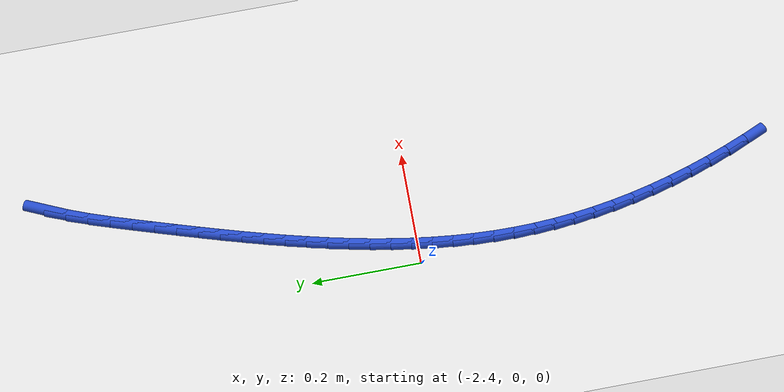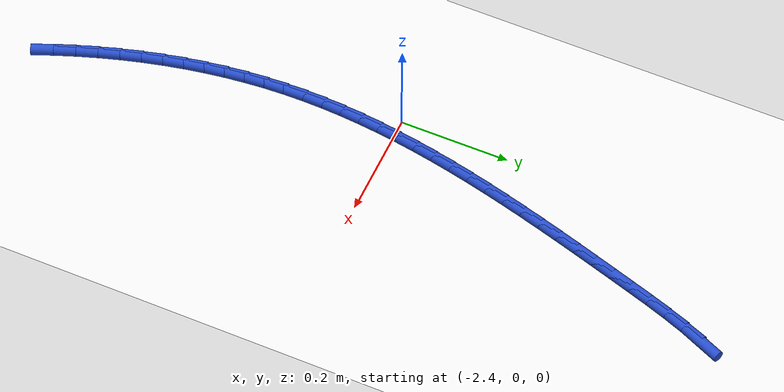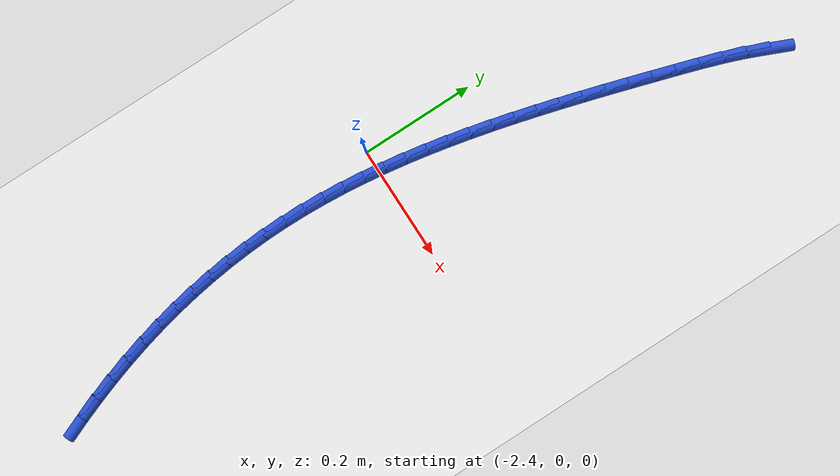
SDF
<sdf version="1.6">
 <world name="default">
  <model name="ground_plane">
   <static>1</static>
   <link name="link">
    <collision name="collision">
     <geometry><plane><normal>0 0 1</normal><size>100 100</size></plane></geometry>
     <surface><friction><ode><mu>100</mu><mu2>50</mu2></ode></friction></surface>
    </collision>
    <visual name="visual">
     <cast_shadows>0</cast_shadows>
     <geometry><plane><normal>0 0 1</normal><size>100 100</size></plane></geometry>
     <material>
      <script><uri>file://media/materials/scripts/gazebo.material</uri><name>Gazebo/WhiteGlow</name></script>
     </material>
    </visual>
   </link>
  </model>
  <model name="line">
   <link name="link_86">
    <pose>-2.182743333406154 0.6484220756656507 0.01 0 1.57 1.1633809160128756</pose>
    <collision name="collision">
     <geometry><cylinder><radius>0.01</radius><length>0.08</length></cylinder></geometry>
    </collision>
    <visual name="visual">
     <material>
      <script><name>Gazebo/Blue</name><uri>file://media/materials/scripts/gazebo.material</uri></script>
     </material>
     <geometry><cylinder><radius>0.01</radius><length>0.08</length></cylinder></geometry>
    </visual>
   </link>
   <link name="link_87">
    <pose>-2.19832546741805 0.6123156978202926 0.01 0 1.57 1.2123745785765128</pose>
    <collision name="collision">
     <geometry><cylinder><radius>0.01</radius><length>0.08</length></cylinder></geometry>
    </collision>
    <visual name="visual">
     <material>
      <script><name>Gazebo/Blue</name><uri>file://media/materials/scripts/gazebo.material</uri></script>
     </material>
     <geometry><cylinder><radius>0.01</radius><length>0.08</length></cylinder></geometry>
    </visual>
   </link>
   <link name="link_88">
    <pose>-2.212330064282339 0.5749304342201754 0.01 0 1.57 1.245750422957284</pose>
    <collision name="collision">
     <geometry><cylinder><radius>0.01</radius><length>0.08</length></cylinder></geometry>
    </collision>
    <visual name="visual">
     <material>
      <script><name>Gazebo/Blue</name><uri>file://media/materials/scripts/gazebo.material</uri></script>
     </material>
     <geometry><cylinder><radius>0.01</radius><length>0.08</length></cylinder></geometry>
    </visual>
   </link>
   <link name="link_89">
    <pose>-2.2252070407030926 0.5367196938417902 0.01 0 1.57 1.2645586026323068</pose>
    <collision name="collision">
     <geometry><cylinder><radius>0.01</radius><length>0.08</length></cylinder></geometry>
    </collision>
    <visual name="visual">
     <material>
      <script><name>Gazebo/Blue</name><uri>file://media/materials/scripts/gazebo.material</uri></script>
     </material>
     <geometry><cylinder><radius>0.01</radius><length>0.08</length></cylinder></geometry>
    </visual>
   </link>
   <link name="link_90">
    <pose>-2.2374063133843816 0.49813688566162545 0.01 0 1.57 1.270413290540117</pose>
    <collision name="collision">
     <geometry><cylinder><radius>0.01</radius><length>0.08</length></cylinder></geometry>
    </collision>
    <visual name="visual">
     <material>
      <script><name>Gazebo/Blue</name><uri>file://media/materials/scripts/gazebo.material</uri></script>
     </material>
     <geometry><cylinder><radius>0.01</radius><length>0.08</length></cylinder></geometry>
    </visual>
   </link>
   <link name="link_91">
    <pose>-2.249342304991646 0.45960335581266826 0.01 0 1.57 1.2728898206307577</pose>
    <collision name="collision">
     <geometry><cylinder><radius>0.01</radius><length>0.08</length></cylinder></geometry>
    </collision>
    <visual name="visual">
     <material>
      <script><name>Gazebo/Blue</name><uri>file://media/materials/scripts/gazebo.material</uri></script>
     </material>
     <geometry><cylinder><radius>0.01</radius><length>0.08</length></cylinder></geometry>
    </visual>
   </link>
   <link name="link_92">
    <pose>-2.2611161755693985 0.42125747078462955 0.01 0 1.57 1.2769476100801107</pose>
    <collision name="collision">
     <geometry><cylinder><radius>0.01</radius><length>0.08</length></cylinder></geometry>
    </collision>
    <visual name="visual">
     <material>
      <script><name>Gazebo/Blue</name><uri>file://media/materials/scripts/gazebo.material</uri></script>
     </material>
     <geometry><cylinder><radius>0.01</radius><length>0.08</length></cylinder></geometry>
    </visual>
   </link>
   <link name="link_93">
    <pose>-2.2726659329262557 0.38309021669552107 0.01 0 1.57 1.2826607527733882</pose>
    <collision name="collision">
     <geometry><cylinder><radius>0.01</radius><length>0.08</length></cylinder></geometry>
    </collision>
    <visual name="visual">
     <material>
      <script><name>Gazebo/Blue</name><uri>file://media/materials/scripts/gazebo.material</uri></script>
     </material>
     <geometry><cylinder><radius>0.01</radius><length>0.08</length></cylinder></geometry>
    </visual>
   </link>
   <link name="link_94">
    <pose>-2.2839281801446187 0.34509131073148197 0.01 0 1.57 1.2900631916455882</pose>
    <collision name="collision">
     <geometry><cylinder><radius>0.01</radius><length>0.08</length></cylinder></geometry>
    </collision>
    <visual name="visual">
     <material>
      <script><name>Gazebo/Blue</name><uri>file://media/materials/scripts/gazebo.material</uri></script>
     </material>
     <geometry><cylinder><radius>0.01</radius><length>0.08</length></cylinder></geometry>
    </visual>
   </link>
   <link name="link_95">
    <pose>-2.294839520306888 0.30725047007865114 0.01 0 1.57 1.2991909446662149</pose>
    <collision name="collision">
     <geometry><cylinder><radius>0.01</radius><length>0.08</length></cylinder></geometry>
    </collision>
    <visual name="visual">
     <material>
      <script><name>Gazebo/Blue</name><uri>file://media/materials/scripts/gazebo.material</uri></script>
     </material>
     <geometry><cylinder><radius>0.01</radius><length>0.08</length></cylinder></geometry>
    </visual>
   </link>
   <link name="link_96">
    <pose>-2.3053365564954644 0.269557411923169 0.01 0 1.57 1.3100815811085809</pose>
    <collision name="collision">
     <geometry><cylinder><radius>0.01</radius><length>0.08</length></cylinder></geometry>
    </collision>
    <visual name="visual">
     <material>
      <script><name>Gazebo/Blue</name><uri>file://media/materials/scripts/gazebo.material</uri></script>
     </material>
     <geometry><cylinder><radius>0.01</radius><length>0.08</length></cylinder></geometry>
    </visual>
   </link>
   <link name="link_97">
    <pose>-2.3153558917927497 0.23200185345117486 0.01 0 1.57 1.3227734902167347</pose>
    <collision name="collision">
     <geometry><cylinder><radius>0.01</radius><length>0.08</length></cylinder></geometry>
    </collision>
    <visual name="visual">
     <material>
      <script><name>Gazebo/Blue</name><uri>file://media/materials/scripts/gazebo.material</uri></script>
     </material>
     <geometry><cylinder><radius>0.01</radius><length>0.08</length></cylinder></geometry>
    </visual>
   </link>
   <link name="link_98">
    <pose>-2.324834129281144 0.19457351184880756 0.01 0 1.57 1.3373049126199532</pose>
    <collision name="collision">
     <geometry><cylinder><radius>0.01</radius><length>0.08</length></cylinder></geometry>
    </collision>
    <visual name="visual">
     <material>
      <script><name>Gazebo/Blue</name><uri>file://media/materials/scripts/gazebo.material</uri></script>
     </material>
     <geometry><cylinder><radius>0.01</radius><length>0.08</length></cylinder></geometry>
    </visual>
   </link>
   <link name="link_99">
    <pose>-2.333707872043048 0.1572621043022075 0.01 0 1.57 1.353712704577502</pose>
    <collision name="collision">
     <geometry><cylinder><radius>0.01</radius><length>0.08</length></cylinder></geometry>
    </collision>
    <visual name="visual">
     <material>
      <script><name>Gazebo/Blue</name><uri>file://media/materials/scripts/gazebo.material</uri></script>
     </material>
     <geometry><cylinder><radius>0.01</radius><length>0.08</length></cylinder></geometry>
    </visual>
   </link>
   <link name="link_100">
    <pose>-2.3419137231608627 0.12005734799751389 0.01 0 1.57 1.37203080771404</pose>
    <collision name="collision">
     <geometry><cylinder><radius>0.01</radius><length>0.08</length></cylinder></geometry>
    </collision>
    <visual name="visual">
     <material>
      <script><name>Gazebo/Blue</name><uri>file://media/materials/scripts/gazebo.material</uri></script>
     </material>
     <geometry><cylinder><radius>0.01</radius><length>0.08</length></cylinder></geometry>
    </visual>
   </link>
   <link name="link_101">
    <pose>-2.3493882857169894 0.08294896012086575 0.01 0 1.57 1.3922884035689662</pose>
    <collision name="collision">
     <geometry><cylinder><radius>0.01</radius><length>0.08</length></cylinder></geometry>
    </collision>
    <visual name="visual">
     <material>
      <script><name>Gazebo/Blue</name><uri>file://media/materials/scripts/gazebo.material</uri></script>
     </material>
     <geometry><cylinder><radius>0.01</radius><length>0.08</length></cylinder></geometry>
    </visual>
   </link>
   <link name="link_102">
    <pose>-2.3560681627938282 0.04592665785840348 0.01 0 1.57 1.4145077444306762</pose>
    <collision name="collision">
     <geometry><cylinder><radius>0.01</radius><length>0.08</length></cylinder></geometry>
    </collision>
    <visual name="visual">
     <material>
      <script><name>Gazebo/Blue</name><uri>file://media/materials/scripts/gazebo.material</uri></script>
     </material>
     <geometry><cylinder><radius>0.01</radius><length>0.08</length></cylinder></geometry>
    </visual>
   </link>
   <link name="link_103">
    <pose>-2.3618899574737804 0.008980158396266202 0.01 0 1.57 1.4387016709650013</pose>
    <collision name="collision">
     <geometry><cylinder><radius>0.01</radius><length>0.08</length></cylinder></geometry>
    </collision>
    <visual name="visual">
     <material>
      <script><name>Gazebo/Blue</name><uri>file://media/materials/scripts/gazebo.material</uri></script>
     </material>
     <geometry><cylinder><radius>0.01</radius><length>0.08</length></cylinder></geometry>
    </visual>
   </link>
   <link name="link_104">
    <pose>-2.3667902728392467 -0.02790082107940664 0.01 0 1.57 1.4648708542068578</pose>
    <collision name="collision">
     <geometry><cylinder><radius>0.01</radius><length>0.08</length></cylinder></geometry>
    </collision>
    <visual name="visual">
     <material>
      <script><name>Gazebo/Blue</name><uri>file://media/materials/scripts/gazebo.material</uri></script>
     </material>
     <geometry><cylinder><radius>0.01</radius><length>0.08</length></cylinder></geometry>
    </visual>
   </link>
   <link name="link_105">
    <pose>-2.3707057119726276 -0.06472656338247548 0.01 0 1.57 1.4930008350019297</pose>
    <collision name="collision">
     <geometry><cylinder><radius>0.01</radius><length>0.08</length></cylinder></geometry>
    </collision>
    <visual name="visual">
     <material>
      <script><name>Gazebo/Blue</name><uri>file://media/materials/scripts/gazebo.material</uri></script>
     </material>
     <geometry><cylinder><radius>0.01</radius><length>0.08</length></cylinder></geometry>
    </visual>
   </link>
   <link name="link_106">
    <pose>-2.373572877956325 -0.10150735132680169 0.01 0 1.57 1.5230589771362248</pose>
    <collision name="collision">
     <geometry><cylinder><radius>0.01</radius><length>0.08</length></cylinder></geometry>
    </collision>
    <visual name="visual">
     <material>
      <script><name>Gazebo/Blue</name><uri>file://media/materials/scripts/gazebo.material</uri></script>
     </material>
     <geometry><cylinder><radius>0.01</radius><length>0.08</length></cylinder></geometry>
    </visual>
   </link>
   <link name="link_107">
    <pose>-2.375328373872739 -0.138253467726244 0.01 0 1.57 1.5549914206254627</pose>
    <collision name="collision">
     <geometry><cylinder><radius>0.01</radius><length>0.08</length></cylinder></geometry>
    </collision>
    <visual name="visual">
     <material>
      <script><name>Gazebo/Blue</name><uri>file://media/materials/scripts/gazebo.material</uri></script>
     </material>
     <geometry><cylinder><radius>0.01</radius><length>0.08</length></cylinder></geometry>
    </visual>
   </link>
   <link name="link_108">
    <pose>-2.375908805668727 -0.17497519573249912 0.01 0 1.57 -1.553199378703952</pose>
    <collision name="collision">
     <geometry><cylinder><radius>0.01</radius><length>0.08</length></cylinder></geometry>
    </collision>
    <visual name="visual">
     <material>
      <script><name>Gazebo/Blue</name><uri>file://media/materials/scripts/gazebo.material</uri></script>
     </material>
     <geometry><cylinder><radius>0.01</radius><length>0.08</length></cylinder></geometry>
    </visual>
   </link>
   <link name="link_109">
    <pose>-2.3752627719635195 -0.21168423291843214 0.01 0 1.57 -1.5195095666705372</pose>
    <collision name="collision">
     <geometry><cylinder><radius>0.01</radius><length>0.08</length></cylinder></geometry>
    </collision>
    <visual name="visual">
     <material>
      <script><name>Gazebo/Blue</name><uri>file://media/materials/scripts/gazebo.material</uri></script>
     </material>
     <geometry><cylinder><radius>0.01</radius><length>0.08</length></cylinder></geometry>
    </visual>
   </link>
   <link name="link_110">
    <pose>-2.373378244558975 -0.24839692054776322 0.01 0 1.57 -1.4858752136908544</pose>
    <collision name="collision">
     <geometry><cylinder><radius>0.01</radius><length>0.08</length></cylinder></geometry>
    </collision>
    <visual name="visual">
     <material>
      <script><name>Gazebo/Blue</name><uri>file://media/materials/scripts/gazebo.material</uri></script>
     </material>
     <geometry><cylinder><radius>0.01</radius><length>0.08</length></cylinder></geometry>
    </visual>
   </link>
   <link name="link_111">
    <pose>-2.370251263278374 -0.2851305514302843 0.01 0 1.57 -1.4524192019428053</pose>
    <collision name="collision">
     <geometry><cylinder><radius>0.01</radius><length>0.08</length></cylinder></geometry>
    </collision>
    <visual name="visual">
     <material>
      <script><name>Gazebo/Blue</name><uri>file://media/materials/scripts/gazebo.material</uri></script>
     </material>
     <geometry><cylinder><radius>0.01</radius><length>0.08</length></cylinder></geometry>
    </visual>
   </link>
   <link name="link_112">
    <pose>-2.365877867944995 -0.3219024183757887 0.01 0 1.57 -1.4192608412347325</pose>
    <collision name="collision">
     <geometry><cylinder><radius>0.01</radius><length>0.08</length></cylinder></geometry>
    </collision>
    <visual name="visual">
     <material>
      <script><name>Gazebo/Blue</name><uri>file://media/materials/scripts/gazebo.material</uri></script>
     </material>
     <geometry><cylinder><radius>0.01</radius><length>0.08</length></cylinder></geometry>
    </visual>
   </link>
   <link name="link_113">
    <pose>-2.3602540983821183 -0.35872981419406685 0.01 0 1.57 -1.3865137589397418</pose>
    <collision name="collision">
     <geometry><cylinder><radius>0.01</radius><length>0.08</length></cylinder></geometry>
    </collision>
    <visual name="visual">
     <material>
      <script><name>Gazebo/Blue</name><uri>file://media/materials/scripts/gazebo.material</uri></script>
     </material>
     <geometry><cylinder><radius>0.01</radius><length>0.08</length></cylinder></geometry>
    </visual>
   </link>
   <link name="link_114">
    <pose>-2.353375994413023 -0.39563003169491173 0.01 0 1.57 -1.3542840433132473</pose>
    <collision name="collision">
     <geometry><cylinder><radius>0.01</radius><length>0.08</length></cylinder></geometry>
    </collision>
    <visual name="visual">
     <material>
      <script><name>Gazebo/Blue</name><uri>file://media/materials/scripts/gazebo.material</uri></script>
     </material>
     <geometry><cylinder><radius>0.01</radius><length>0.08</length></cylinder></geometry>
    </visual>
   </link>
   <link name="link_115">
    <pose>-2.345239595860988 -0.43262036368811574 0.01 0 1.57 -1.3226687091357738</pose>
    <collision name="collision">
     <geometry><cylinder><radius>0.01</radius><length>0.08</length></cylinder></geometry>
    </collision>
    <visual name="visual">
     <material>
      <script><name>Gazebo/Blue</name><uri>file://media/materials/scripts/gazebo.material</uri></script>
     </material>
     <geometry><cylinder><radius>0.01</radius><length>0.08</length></cylinder></geometry>
    </visual>
   </link>
   <link name="link_116">
    <pose>-2.3358409425492925 -0.46971810298347083 0.01 0 1.57 -1.2917545299019488</pose>
    <collision name="collision">
     <geometry><cylinder><radius>0.01</radius><length>0.08</length></cylinder></geometry>
    </collision>
    <visual name="visual">
     <material>
      <script><name>Gazebo/Blue</name><uri>file://media/materials/scripts/gazebo.material</uri></script>
     </material>
     <geometry><cylinder><radius>0.01</radius><length>0.08</length></cylinder></geometry>
    </visual>
   </link>
   <link name="link_117">
    <pose>-2.325176074301217 -0.5069405423907694 0.01 0 1.57 -1.2616172548117885</pose>
    <collision name="collision">
     <geometry><cylinder><radius>0.01</radius><length>0.08</length></cylinder></geometry>
    </collision>
    <visual name="visual">
     <material>
      <script><name>Gazebo/Blue</name><uri>file://media/materials/scripts/gazebo.material</uri></script>
     </material>
     <geometry><cylinder><radius>0.01</radius><length>0.08</length></cylinder></geometry>
    </visual>
   </link>
   <link name="link_118">
    <pose>-2.3132410309400404 -0.5443049747198033 0.01 0 1.57 -1.2323212043548455</pose>
    <collision name="collision">
     <geometry><cylinder><radius>0.01</radius><length>0.08</length></cylinder></geometry>
    </collision>
    <visual name="visual">
     <material>
      <script><name>Gazebo/Blue</name><uri>file://media/materials/scripts/gazebo.material</uri></script>
     </material>
     <geometry><cylinder><radius>0.01</radius><length>0.08</length></cylinder></geometry>
    </visual>
   </link>
   <link name="link_119">
    <pose>-2.3000318522890417 -0.5818286927803662 0.01 0 1.57 -1.203919217492783</pose>
    <collision name="collision">
     <geometry><cylinder><radius>0.01</radius><length>0.08</length></cylinder></geometry>
    </collision>
    <visual name="visual">
     <material>
      <script><name>Gazebo/Blue</name><uri>file://media/materials/scripts/gazebo.material</uri></script>
     </material>
     <geometry><cylinder><radius>0.01</radius><length>0.08</length></cylinder></geometry>
    </visual>
   </link>
   <link name="link_120">
    <pose>-2.2855445781715003 -0.6195289893822482 0.01 0 1.57 -1.1764529077450745</pose>
    <collision name="collision">
     <geometry><cylinder><radius>0.01</radius><length>0.08</length></cylinder></geometry>
    </collision>
    <visual name="visual">
     <material>
      <script><name>Gazebo/Blue</name><uri>file://media/materials/scripts/gazebo.material</uri></script>
     </material>
     <geometry><cylinder><radius>0.01</radius><length>0.08</length></cylinder></geometry>
    </visual>
   </link>
  </model>
 </world>
</sdf>
